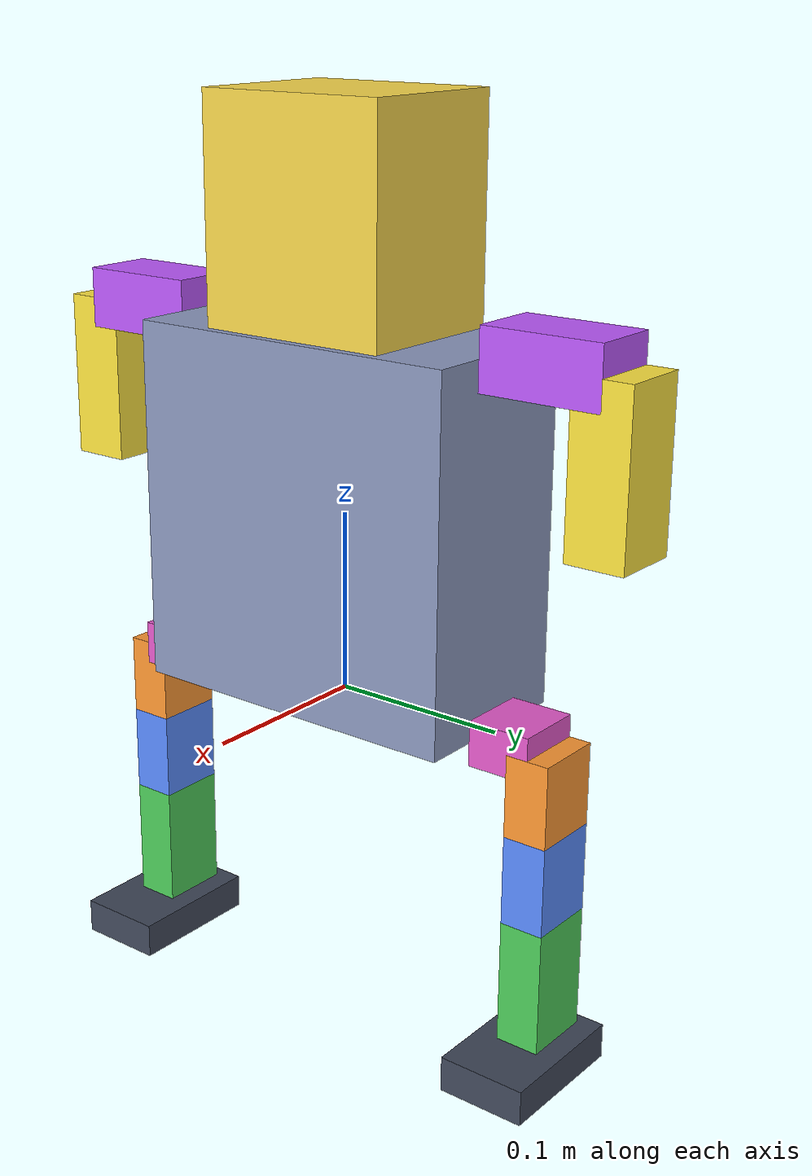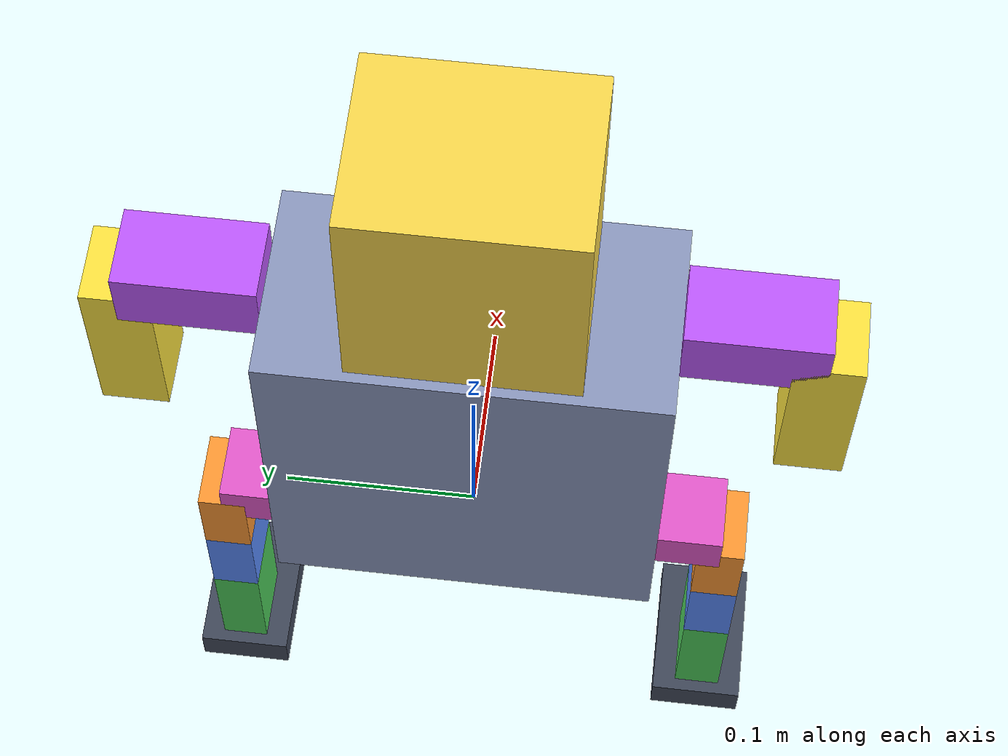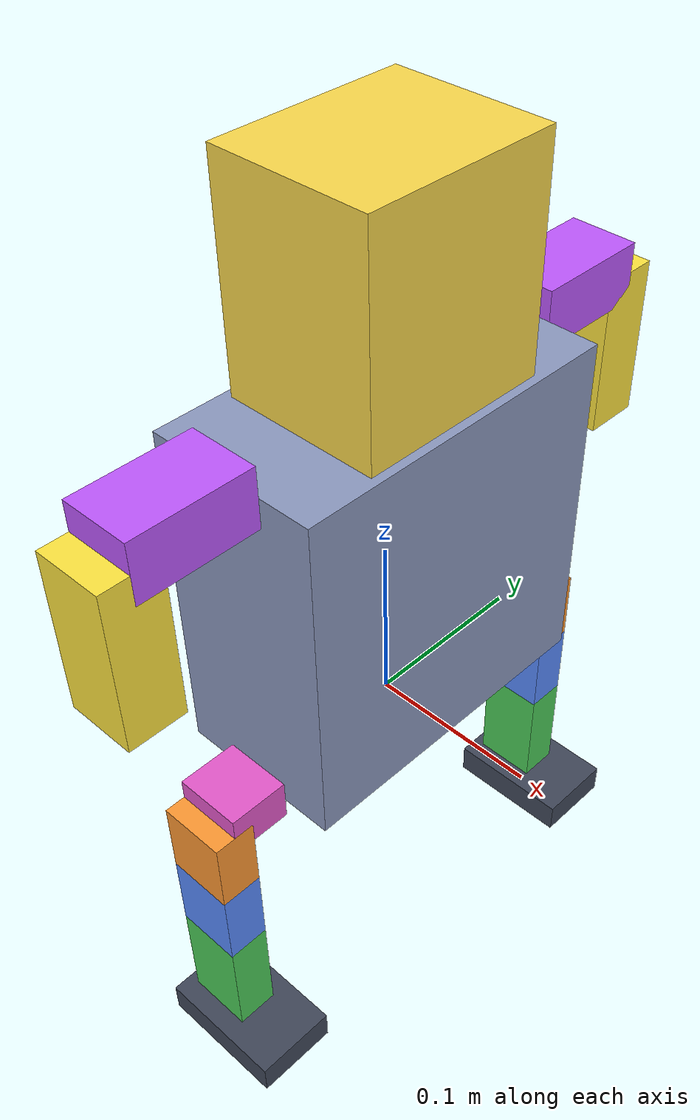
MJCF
<mujoco model="pikachu_sample_14dof_links">
  <compiler angle="radian" />

  <worldbody>
    <body name="base_link">
      <inertial pos="0 0 0.1" mass="5.844" diaginertia="0.03796 0.02435 0.02335" />
      <geom size="0.05 0.0974 0.1" pos="0 0 0.1" type="box" contype="1" conaffinity="1" group="0" rgba="0.55 0.6 0.75 1" density="1500.000000" />
      <body name="head_link" pos="0 0 0.26">
        <inertial pos="0 0 0" mass="1.782" diaginertia="0.003935 0.003341 0.003" />
        <joint name="head_joint" range="-0.8 0.8" actuatorfrcrange="-2 2" axis="0 1 0" />
        <geom size="0.045 0.055 0.06" type="box" contype="1" conaffinity="1" group="0" rgba="0.98 0.85 0.3 1" density="1500.000000" />
      <geom size="0.045 0.055 0.06" type="box" contype="0" conaffinity="0" group="1" rgba="0.98 0.85 0.3 1" density="0" />
      </body>
      <body name="left_hip_pitch_link" pos="0 0.0974 0">
        <inertial pos="0 0.01775 0" quat="0 0.707107 0 0.707107" mass="0.05325" diaginertia="1.3e-05 1e-05 8e-06" />
        <joint name="left_hip_pitch_joint" range="0 2.44" actuatorfrcrange="-12.5 12.5" axis="0 -1 0" />
        <geom size="0.02 0.01775 0.0125" pos="0 0.01775 0" type="box" contype="1" conaffinity="1" group="0" rgba="0.9 0.35 0.8 1" density="1500.000000" />
        <body name="left_hip_roll_link" pos="0 0.0355 0">
          <inertial pos="0 0 -0.023" quat="0.707107 0 0 0.707107" mass="0.069" diaginertia="2.1e-05 1.6e-05 1.3e-05" />
          <joint name="left_hip_roll_joint" range="-0.09 0.26" actuatorfrcrange="-9 9" axis="1 0 0" />
          <geom size="0.02 0.0125 0.023" pos="0 0 -0.023" type="box" contype="1" conaffinity="1" group="0" rgba="1 0.6 0.2 1" density="1500.000000" />
          <body name="left_hip_yaw_link" pos="0 0 -0.046">
            <inertial pos="0 0 -0.02505" quat="0.707107 0 0 0.707107" mass="0.07515" diaginertia="2.6e-05 2e-05 1.4e-05" />
            <joint name="left_hip_yaw_joint" range="-0.09 0.26" actuatorfrcrange="-9 9" />
            <geom size="0.02 0.0125 0.02505" pos="0 0 -0.02505" type="box" contype="1" conaffinity="1" group="0" rgba="0.35 0.55 1 1" density="1500.000000" />
            <body name="left_knee_link" pos="0 0 -0.0501">
              <inertial pos="0 0 -0.035" quat="0.707107 0 0 0.707107" mass="0.105" diaginertia="5.7e-05 4.8e-05 1.9e-05" />
              <joint name="left_knee_joint" range="0 1.57" actuatorfrcrange="-12.5 12.5" axis="0 1 0" />
              <geom size="0.02 0.0125 0.035" pos="0 0 -0.035" type="box" contype="1" conaffinity="1" group="0" rgba="0.3 0.8 0.35 1" density="1500.000000" />
              <body name="left_ankle_link" pos="0 0 -0.07">
                <inertial pos="0.0133333 0 -0.01" quat="0 0.707107 0 0.707107" mass="0.12" diaginertia="8.9e-05 6.8e-05 2.9e-05" />
                <joint name="left_ankle_joint" range="-0.52 1.05" actuatorfrcrange="-9 9" axis="0 -1 0" />
                <geom size="0.04 0.025 0.01" pos="0.0133333 0 -0.01" type="box" contype="1" conaffinity="1" group="0" rgba="0.25 0.28 0.35 1" density="1500.000000" />
              <geom size="0.04 0.025 0.01" pos="0.0133333 0 -0.01" type="box" contype="0" conaffinity="0" group="1" rgba="0.25 0.28 0.35 1" density="0" />
              </body>
            <geom size="0.02 0.0125 0.035" pos="0 0 -0.035" type="box" contype="0" conaffinity="0" group="1" rgba="0.3 0.8 0.35 1" density="0" />
              </body>
          <geom size="0.02 0.0125 0.02505" pos="0 0 -0.02505" type="box" contype="0" conaffinity="0" group="1" rgba="0.35 0.55 1 1" density="0" />
            </body>
        <geom size="0.02 0.0125 0.023" pos="0 0 -0.023" type="box" contype="0" conaffinity="0" group="1" rgba="1 0.6 0.2 1" density="0" />
          </body>
      <geom size="0.02 0.01775 0.0125" pos="0 0.01775 0" type="box" contype="0" conaffinity="0" group="1" rgba="0.9 0.35 0.8 1" density="0" />
        </body>
      <body name="right_hip_pitch_link" pos="0 -0.0974 0">
        <inertial pos="0 -0.01775 0" quat="0 0.707107 0 0.707107" mass="0.05325" diaginertia="1.3e-05 1e-05 8e-06" />
        <joint name="right_hip_pitch_joint" range="0 2.44" actuatorfrcrange="-12.5 12.5" axis="0 -1 0" />
        <geom size="0.02 0.01775 0.0125" pos="0 -0.01775 0" type="box" contype="1" conaffinity="1" group="0" rgba="0.9 0.35 0.8 1" density="1500.000000" />
        <body name="right_hip_roll_link" pos="0 -0.0355 0">
          <inertial pos="0 0 -0.023" quat="0.707107 0 0 0.707107" mass="0.069" diaginertia="2.1e-05 1.6e-05 1.3e-05" />
          <joint name="right_hip_roll_joint" range="-0.09 0.26" actuatorfrcrange="-9 9" axis="-1 0 0" />
          <geom size="0.02 0.0125 0.023" pos="0 0 -0.023" type="box" contype="1" conaffinity="1" group="0" rgba="1 0.6 0.2 1" density="1500.000000" />
          <body name="right_hip_yaw_link" pos="0 0 -0.046">
            <inertial pos="0 0 -0.02505" quat="0.707107 0 0 0.707107" mass="0.07515" diaginertia="2.6e-05 2e-05 1.4e-05" />
            <joint name="right_hip_yaw_joint" range="-0.09 0.26" actuatorfrcrange="-9 9" axis="0 0 -1" />
            <geom size="0.02 0.0125 0.02505" pos="0 0 -0.02505" type="box" contype="1" conaffinity="1" group="0" rgba="0.35 0.55 1 1" density="1500.000000" />
            <body name="right_knee_link" pos="0 0 -0.0501">
              <inertial pos="0 0 -0.035" quat="0.707107 0 0 0.707107" mass="0.105" diaginertia="5.7e-05 4.8e-05 1.9e-05" />
              <joint name="right_knee_joint" range="0 1.57" actuatorfrcrange="-12.5 12.5" axis="0 1 0" />
              <geom size="0.02 0.0125 0.035" pos="0 0 -0.035" type="box" contype="1" conaffinity="1" group="0" rgba="0.3 0.8 0.35 1" density="1500.000000" />
              <body name="right_ankle_link" pos="0 0 -0.07">
                <inertial pos="0.0133333 0 -0.01" quat="0 0.707107 0 0.707107" mass="0.12" diaginertia="8.9e-05 6.8e-05 2.9e-05" />
                <joint name="right_ankle_joint" range="-0.52 1.05" actuatorfrcrange="-9 9" axis="0 -1 0" />
                <geom size="0.04 0.025 0.01" pos="0.0133333 0 -0.01" type="box" contype="1" conaffinity="1" group="0" rgba="0.25 0.28 0.35 1" density="1500.000000" />
              <geom size="0.04 0.025 0.01" pos="0.0133333 0 -0.01" type="box" contype="0" conaffinity="0" group="1" rgba="0.25 0.28 0.35 1" density="0" />
              </body>
            <geom size="0.02 0.0125 0.035" pos="0 0 -0.035" type="box" contype="0" conaffinity="0" group="1" rgba="0.3 0.8 0.35 1" density="0" />
              </body>
          <geom size="0.02 0.0125 0.02505" pos="0 0 -0.02505" type="box" contype="0" conaffinity="0" group="1" rgba="0.35 0.55 1 1" density="0" />
            </body>
        <geom size="0.02 0.0125 0.023" pos="0 0 -0.023" type="box" contype="0" conaffinity="0" group="1" rgba="1 0.6 0.2 1" density="0" />
          </body>
      <geom size="0.02 0.01775 0.0125" pos="0 -0.01775 0" type="box" contype="0" conaffinity="0" group="1" rgba="0.9 0.35 0.8 1" density="0" />
        </body>
      <body name="left_arm_pitch_link" pos="0 0.0974 0.2">
        <inertial pos="0 0.0341 0" quat="0.5 0.5 -0.5 0.5" mass="0.13592" diaginertia="7.1e-05 6.5e-05 3.1e-05" />
        <joint name="left_arm_pitch_joint" range="-1.57 1.57" actuatorfrcrange="-2 2" axis="0 -1 0" />
        <geom size="0.01995 0.0341 0.01665" pos="0 0.0341 0" type="box" contype="1" conaffinity="1" group="0" rgba="0.75 0.35 1 1" density="1499.967544" />
        <body name="left_arm_roll_link" pos="0 0.0682 0">
          <inertial pos="0 0 -0.0459" quat="0.707107 0 0 0.707107" mass="0.18296" diaginertia="0.000153 0.000145 4.1e-05" />
          <joint name="left_arm_roll_joint" range="-1.57 1.57" actuatorfrcrange="-2 2" axis="1 0 0" />
          <geom size="0.01995 0.01665 0.0459" pos="0 0 -0.0459" type="box" contype="1" conaffinity="1" group="0" rgba="1 0.9 0.25 1" density="1500.017553" />
        <geom size="0.01995 0.01665 0.0459" pos="0 0 -0.0459" type="box" contype="0" conaffinity="0" group="1" rgba="1 0.9 0.25 1" density="0" />
        </body>
      <geom size="0.01995 0.0341 0.01665" pos="0 0.0341 0" type="box" contype="0" conaffinity="0" group="1" rgba="0.75 0.35 1 1" density="0" />
        </body>
      <body name="right_arm_pitch_link" pos="0 -0.0974 0.2">
        <inertial pos="0 -0.0341 0" quat="0.5 0.5 -0.5 0.5" mass="0.13592" diaginertia="7.1e-05 6.5e-05 3.1e-05" />
        <joint name="right_arm_pitch_joint" range="-1.57 1.57" actuatorfrcrange="-2 2" axis="0 -1 0" />
        <geom size="0.01995 0.0341 0.01665" pos="0 -0.0341 0" type="box" contype="1" conaffinity="1" group="0" rgba="0.75 0.35 1 1" density="1499.967544" />
        <body name="right_arm_roll_link" pos="0 -0.0682 0">
          <inertial pos="0 0 -0.0459" quat="0.707107 0 0 0.707107" mass="0.18296" diaginertia="0.000153 0.000145 4.1e-05" />
          <joint name="right_arm_roll_joint" range="-1.57 1.57" actuatorfrcrange="-2 2" axis="-1 0 0" />
          <geom size="0.01995 0.01665 0.0459" pos="0 0 -0.0459" type="box" contype="1" conaffinity="1" group="0" rgba="1 0.9 0.25 1" density="1500.017553" />
        <geom size="0.01995 0.01665 0.0459" pos="0 0 -0.0459" type="box" contype="0" conaffinity="0" group="1" rgba="1 0.9 0.25 1" density="0" />
        </body>
      <geom size="0.01995 0.0341 0.01665" pos="0 -0.0341 0" type="box" contype="0" conaffinity="0" group="1" rgba="0.75 0.35 1 1" density="0" />
        </body>
    <geom size="0.05 0.0974 0.1" pos="0 0 0.1" type="box" contype="0" conaffinity="0" group="1" rgba="0.55 0.6 0.75 1" density="0" />
      </body>
  </worldbody>
</mujoco>
